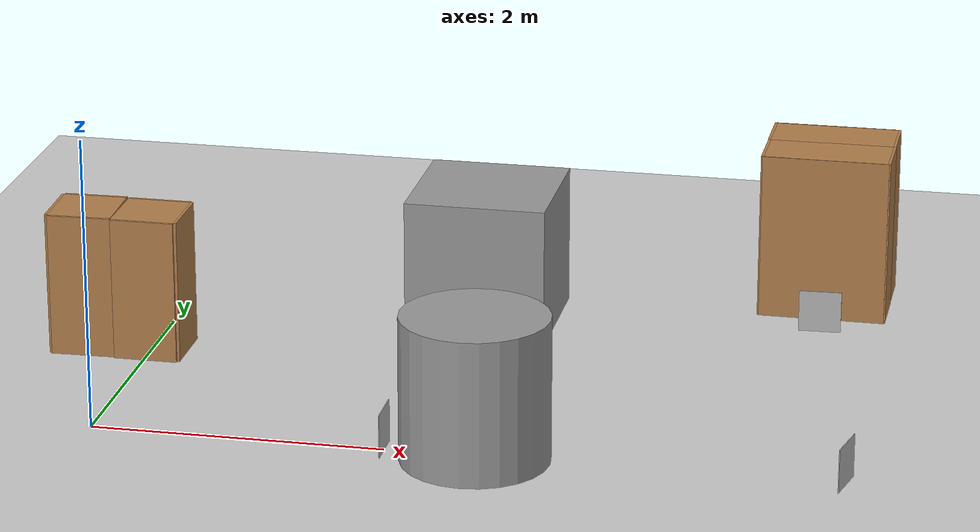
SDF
<sdf version="1.7">
 <world name="default">
  <light name="sun" type="directional">
   <pose>0 0 10 0 -0 0</pose>
   <diffuse>0.8 0.8 0.8 1</diffuse>
   <specular>0.2 0.2 0.2 1</specular>
   <attenuation>
    <range>1000</range>
    <constant>0.9</constant>
    <linear>0.01</linear>
    <quadratic>0.001</quadratic>
   </attenuation>
   <direction>-0.5 0.1 -0.9</direction>
   <spot><inner_angle>0</inner_angle><outer_angle>0</outer_angle><falloff>0</falloff></spot>
  </light>
  <model name="ground_plane">
   <static>1</static>
   <link name="link">
    <collision name="collision">
     <geometry><plane><normal>0 0 1</normal><size>100 100</size></plane></geometry>
     <surface><friction><ode><mu>100</mu><mu2>50</mu2></ode></friction></surface>
    </collision>
    <visual name="visual">
     <cast_shadows>0</cast_shadows>
     <geometry><plane><normal>0 0 1</normal><size>100 100</size></plane></geometry>
     <material>
      <script><uri>file://media/materials/scripts/gazebo.material</uri><name>Gazebo/Grey</name></script>
     </material>
    </visual>
   </link>
  </model>
  <gravity>0 0 -9.8</gravity>
  <magnetic_field>6e-06 2.3e-05 -4.2e-05</magnetic_field>
  <atmosphere type="adiabatic"/>
  <physics type="ode">
   <max_step_size>0.001</max_step_size>
   <real_time_factor>1</real_time_factor>
   <real_time_update_rate>1000</real_time_update_rate>
  </physics>
  <scene><ambient>0.4 0.4 0.4 1</ambient><background>0.7 0.7 0.7 1</background><shadows>1</shadows></scene>
  <spherical_coordinates>
   <surface_model>EARTH_WGS84</surface_model>
   <latitude_deg>0</latitude_deg>
   <longitude_deg>0</longitude_deg>
   <elevation>0</elevation>
   <heading_deg>0</heading_deg>
  </spherical_coordinates>
  <model name="marker_1">
   <static>1</static>
   <link name="link">
    <visual name="visual">
     <geometry><mesh><uri>model://marker_1/meshes/marker_1.dae</uri><scale>0.6 0.6 0.6</scale></mesh></geometry>
    </visual>
   </link>
   <pose>2 0 0 0 -0 0</pose>
  </model>
  <model name="unit_cylinder">
   <pose>2.61449 -0.028551 0.499994 4e-06 -3e-06 0</pose>
   <link name="link">
    <inertial>
     <mass>1</mass>
     <inertia><ixx>0.145833</ixx><ixy>0</ixy><ixz>0</ixz><iyy>0.145833</iyy><iyz>0</iyz><izz>0.125</izz></inertia>
    </inertial>
    <collision name="collision">
     <geometry><cylinder><radius>0.5</radius><length>1</length></cylinder></geometry>
    </collision>
    <visual name="visual">
     <geometry><cylinder><radius>0.5</radius><length>1</length></cylinder></geometry>
     <material>
      <script><name>Gazebo/Grey</name><uri>file://media/materials/scripts/gazebo.material</uri></script>
     </material>
    </visual>
   </link>
  </model>
  <model name="marker_2">
   <static>1</static>
   <link name="link">
    <visual name="visual">
     <geometry><mesh><uri>model://marker_2/meshes/marker_2.dae</uri><scale>0.6 0.6 0.6</scale></mesh></geometry>
    </visual>
   </link>
   <pose>5.03143 0.025431 0 0 0 -0.215229</pose>
  </model>
  <model name="cabinet">
   <static>1</static>
   <link name="cabinet_bottom_plate">
    <inertial>
     <pose>0 0 -1 0 -0 0</pose>
     <inertia><ixx>2.05</ixx><ixy>0</ixy><ixz>0</ixz><iyy>2.05</iyy><iyz>0</iyz><izz>2.05</izz></inertia>
     <mass>25</mass>
    </inertial>
    <collision name="cabinet_bottom_plate_geom">
     <pose>0 0 0.01 0 -0 0</pose>
     <geometry><box><size>0.45 0.45 0.02</size></box></geometry>
    </collision>
    <visual name="cabinet_bottom_plate_geom_visual">
     <pose>0 0 0.01 0 -0 0</pose>
     <geometry><box><size>0.45 0.45 0.02</size></box></geometry>
     <material>
      <script><uri>file://media/materials/scripts/gazebo.material</uri><name>Gazebo/Wood</name></script>
     </material>
    </visual>
    <collision name="cabinet_bottom_plate_geom_cabinet_back_plate">
     <pose>0.235 0 0.51 0 -0 0</pose>
     <geometry><box><size>0.02 0.45 1.02</size></box></geometry>
    </collision>
    <visual name="cabinet_bottom_plate_geom_cabinet_back_plate_visual">
     <pose>0.235 0 0.51 0 -0 0</pose>
     <geometry><box><size>0.02 0.45 1.02</size></box></geometry>
     <material>
      <script><uri>file://media/materials/scripts/gazebo.material</uri><name>Gazebo/Wood</name></script>
     </material>
    </visual>
    <collision name="cabinet_bottom_plate_geom_cabinet_left_plate">
     <pose>0 0.235 0.51 0 -0 0</pose>
     <geometry><box><size>0.45 0.02 1.02</size></box></geometry>
    </collision>
    <visual name="cabinet_bottom_plate_geom_cabinet_left_plate_visual">
     <pose>0 0.235 0.51 0 -0 0</pose>
     <geometry><box><size>0.45 0.02 1.02</size></box></geometry>
     <material>
      <script><uri>file://media/materials/scripts/gazebo.material</uri><name>Gazebo/Wood</name></script>
     </material>
    </visual>
    <collision name="cabinet_bottom_plate_geom_cabinet_middle_plate">
     <pose>0 0 0.51 0 -0 0</pose>
     <geometry><box><size>0.45 0.45 0.02</size></box></geometry>
    </collision>
    <visual name="cabinet_bottom_plate_geom_cabinet_middle_plate_visual">
     <pose>0 0 0.51 0 -0 0</pose>
     <geometry><box><size>0.45 0.45 0.02</size></box></geometry>
     <material>
      <script><uri>file://media/materials/scripts/gazebo.material</uri><name>Gazebo/Wood</name></script>
     </material>
    </visual>
    <collision name="cabinet_bottom_plate_geom_cabinet_right_plate">
     <pose>0 -0.235 0.51 0 -0 0</pose>
     <geometry><box><size>0.45 0.02 1.02</size></box></geometry>
    </collision>
    <visual name="cabinet_bottom_plate_geom_cabinet_right_plate_visual">
     <pose>0 -0.235 0.51 0 -0 0</pose>
     <geometry><box><size>0.45 0.02 1.02</size></box></geometry>
     <material>
      <script><uri>file://media/materials/scripts/gazebo.material</uri><name>Gazebo/Wood</name></script>
     </material>
    </visual>
    <collision name="cabinet_bottom_plate_geom_cabinet_top_plate">
     <pose>0 0 1.01 0 -0 0</pose>
     <geometry><box><size>0.45 0.45 0.02</size></box></geometry>
    </collision>
    <visual name="cabinet_bottom_plate_geom_cabinet_top_plate_visual">
     <pose>0 0 1.01 0 -0 0</pose>
     <geometry><box><size>0.45 0.45 0.02</size></box></geometry>
     <material>
      <script><uri>file://media/materials/scripts/gazebo.material</uri><name>Gazebo/Wood</name></script>
     </material>
    </visual>
   </link>
   <pose>0.008848 1.47191 0 0 -0 0.000273</pose>
  </model>
  <model name="bookshelf">
   <static>1</static>
   <link name="link">
    <inertial><mass>1</mass></inertial>
    <collision name="back">
     <pose>0 0.005 0.6 0 -0 0</pose>
     <geometry><box><size>0.9 0.01 1.2</size></box></geometry>
    </collision>
    <visual name="visual1">
     <pose>0 0.005 0.6 0 -0 0</pose>
     <geometry><box><size>0.9 0.01 1.2</size></box></geometry>
     <material>
      <script><uri>file://media/materials/scripts/gazebo.material</uri><name>Gazebo/Wood</name></script>
     </material>
    </visual>
    <collision name="left_side">
     <pose>0.45 -0.195 0.6 0 -0 0</pose>
     <geometry><box><size>0.02 0.4 1.2</size></box></geometry>
    </collision>
    <visual name="visual2">
     <pose>0.45 -0.195 0.6 0 -0 0</pose>
     <geometry><box><size>0.02 0.4 1.2</size></box></geometry>
     <material>
      <script><uri>file://media/materials/scripts/gazebo.material</uri><name>Gazebo/Wood</name></script>
     </material>
    </visual>
    <collision name="right_side">
     <pose>-0.45 -0.195 0.6 0 -0 0</pose>
     <geometry><box><size>0.02 0.4 1.2</size></box></geometry>
    </collision>
    <visual name="visual3">
     <pose>-0.45 -0.195 0.6 0 -0 0</pose>
     <geometry><box><size>0.02 0.4 1.2</size></box></geometry>
     <material>
      <script><uri>file://media/materials/scripts/gazebo.material</uri><name>Gazebo/Wood</name></script>
     </material>
    </visual>
    <collision name="bottom">
     <pose>0 -0.195 0.03 0 -0 0</pose>
     <geometry><box><size>0.88 0.4 0.06</size></box></geometry>
    </collision>
    <visual name="visual4">
     <pose>0 -0.195 0.03 0 -0 0</pose>
     <geometry><box><size>0.88 0.4 0.06</size></box></geometry>
     <material>
      <script><uri>file://media/materials/scripts/gazebo.material</uri><name>Gazebo/Wood</name></script>
     </material>
    </visual>
    <collision name="top">
     <pose>0 -0.195 1.19 0 -0 0</pose>
     <geometry><box><size>0.88 0.4 0.02</size></box></geometry>
    </collision>
    <visual name="visual5">
     <pose>0 -0.195 1.19 0 -0 0</pose>
     <geometry><box><size>0.88 0.4 0.02</size></box></geometry>
     <material>
      <script><uri>file://media/materials/scripts/gazebo.material</uri><name>Gazebo/Wood</name></script>
     </material>
    </visual>
    <collision name="low_shelf">
     <pose>0 -0.195 0.43 0 -0 0</pose>
     <geometry><box><size>0.88 0.4 0.02</size></box></geometry>
    </collision>
    <visual name="visual6">
     <pose>0 -0.195 0.43 0 -0 0</pose>
     <geometry><box><size>0.88 0.4 0.02</size></box></geometry>
     <material>
      <script><uri>file://media/materials/scripts/gazebo.material</uri><name>Gazebo/Wood</name></script>
     </material>
    </visual>
    <collision name="high_shelf">
     <pose>0 -0.195 0.8 0 -0 0</pose>
     <geometry><box><size>0.88 0.4 0.02</size></box></geometry>
    </collision>
    <visual name="visual7">
     <pose>0 -0.195 0.8 0 -0 0</pose>
     <geometry><box><size>0.88 0.4 0.02</size></box></geometry>
     <material>
      <script><uri>file://media/materials/scripts/gazebo.material</uri><name>Gazebo/Wood</name></script>
     </material>
    </visual>
   </link>
   <pose>4.52763 2.97533 0 0 -0 3.13937</pose>
  </model>
  <model name="marker_3">
   <static>1</static>
   <link name="link">
    <visual name="visual">
     <geometry><mesh><uri>model://marker_3/meshes/marker_3.dae</uri><scale>0.6 0.6 0.6</scale></mesh></geometry>
    </visual>
   </link>
   <pose>4.54689 2.72713 0 0 -0 1.61119</pose>
  </model>
  <model name="unit_box">
   <pose>2.18293 2.52562 0.499995 0 -1e-05 0</pose>
   <link name="link">
    <inertial>
     <mass>1</mass>
     <inertia>
      <ixx>0.166667</ixx>
      <ixy>0</ixy>
      <ixz>0</ixz>
      <iyy>0.166667</iyy>
      <iyz>0</iyz>
      <izz>0.166667</izz>
     </inertia>
    </inertial>
    <collision name="collision"><geometry><box><size>1 1 1</size></box></geometry></collision>
    <visual name="visual">
     <geometry><box><size>1 1 1</size></box></geometry>
     <material>
      <script><name>Gazebo/Grey</name><uri>file://media/materials/scripts/gazebo.material</uri></script>
     </material>
    </visual>
   </link>
  </model>
  <model name="marker_4">
   <static>1</static>
   <link name="link">
    <visual name="visual">
     <geometry><mesh><uri>model://marker_4/meshes/marker_4.dae</uri><scale>0.6 0.6 0.6</scale></mesh></geometry>
    </visual>
   </link>
   <pose>2.3 4.4 0 0 -0 0</pose>
  </model>
  <model name="marker_5">
   <static>1</static>
   <link name="link">
    <visual name="visual">
     <geometry><mesh><uri>model://marker_5/meshes/marker_5.dae</uri><scale>0.6 0.6 0.6</scale></mesh></geometry>
    </visual>
   </link>
   <pose>0 2 0 0 -0 1.47358</pose>
  </model>
  <model name="cabinet_0">
   <static>1</static>
   <link name="cabinet_bottom_plate">
    <inertial>
     <pose>0 0 -1 0 -0 0</pose>
     <inertia><ixx>2.05</ixx><ixy>0</ixy><ixz>0</ixz><iyy>2.05</iyy><iyz>0</iyz><izz>2.05</izz></inertia>
     <mass>25</mass>
    </inertial>
    <collision name="cabinet_bottom_plate_geom">
     <pose>0 0 0.01 0 -0 0</pose>
     <geometry><box><size>0.45 0.45 0.02</size></box></geometry>
    </collision>
    <visual name="cabinet_bottom_plate_geom_visual">
     <pose>0 0 0.01 0 -0 0</pose>
     <geometry><box><size>0.45 0.45 0.02</size></box></geometry>
     <material>
      <script><uri>file://media/materials/scripts/gazebo.material</uri><name>Gazebo/Wood</name></script>
     </material>
    </visual>
    <collision name="cabinet_bottom_plate_geom_cabinet_back_plate">
     <pose>0.235 0 0.51 0 -0 0</pose>
     <geometry><box><size>0.02 0.45 1.02</size></box></geometry>
    </collision>
    <visual name="cabinet_bottom_plate_geom_cabinet_back_plate_visual">
     <pose>0.235 0 0.51 0 -0 0</pose>
     <geometry><box><size>0.02 0.45 1.02</size></box></geometry>
     <material>
      <script><uri>file://media/materials/scripts/gazebo.material</uri><name>Gazebo/Wood</name></script>
     </material>
    </visual>
    <collision name="cabinet_bottom_plate_geom_cabinet_left_plate">
     <pose>0 0.235 0.51 0 -0 0</pose>
     <geometry><box><size>0.45 0.02 1.02</size></box></geometry>
    </collision>
    <visual name="cabinet_bottom_plate_geom_cabinet_left_plate_visual">
     <pose>0 0.235 0.51 0 -0 0</pose>
     <geometry><box><size>0.45 0.02 1.02</size></box></geometry>
     <material>
      <script><uri>file://media/materials/scripts/gazebo.material</uri><name>Gazebo/Wood</name></script>
     </material>
    </visual>
    <collision name="cabinet_bottom_plate_geom_cabinet_middle_plate">
     <pose>0 0 0.51 0 -0 0</pose>
     <geometry><box><size>0.45 0.45 0.02</size></box></geometry>
    </collision>
    <visual name="cabinet_bottom_plate_geom_cabinet_middle_plate_visual">
     <pose>0 0 0.51 0 -0 0</pose>
     <geometry><box><size>0.45 0.45 0.02</size></box></geometry>
     <material>
      <script><uri>file://media/materials/scripts/gazebo.material</uri><name>Gazebo/Wood</name></script>
     </material>
    </visual>
    <collision name="cabinet_bottom_plate_geom_cabinet_right_plate">
     <pose>0 -0.235 0.51 0 -0 0</pose>
     <geometry><box><size>0.45 0.02 1.02</size></box></geometry>
    </collision>
    <visual name="cabinet_bottom_plate_geom_cabinet_right_plate_visual">
     <pose>0 -0.235 0.51 0 -0 0</pose>
     <geometry><box><size>0.45 0.02 1.02</size></box></geometry>
     <material>
      <script><uri>file://media/materials/scripts/gazebo.material</uri><name>Gazebo/Wood</name></script>
     </material>
    </visual>
    <collision name="cabinet_bottom_plate_geom_cabinet_top_plate">
     <pose>0 0 1.01 0 -0 0</pose>
     <geometry><box><size>0.45 0.45 0.02</size></box></geometry>
    </collision>
    <visual name="cabinet_bottom_plate_geom_cabinet_top_plate_visual">
     <pose>0 0 1.01 0 -0 0</pose>
     <geometry><box><size>0.45 0.45 0.02</size></box></geometry>
     <material>
      <script><uri>file://media/materials/scripts/gazebo.material</uri><name>Gazebo/Wood</name></script>
     </material>
    </visual>
   </link>
   <pose>-0.451533 1.47835 0 0 0 -3.11109</pose>
  </model>
  <model name="bookshelf_0">
   <static>1</static>
   <link name="link">
    <inertial><mass>1</mass></inertial>
    <collision name="back">
     <pose>0 0.005 0.6 0 -0 0</pose>
     <geometry><box><size>0.9 0.01 1.2</size></box></geometry>
    </collision>
    <visual name="visual1">
     <pose>0 0.005 0.6 0 -0 0</pose>
     <geometry><box><size>0.9 0.01 1.2</size></box></geometry>
     <material>
      <script><uri>file://media/materials/scripts/gazebo.material</uri><name>Gazebo/Wood</name></script>
     </material>
    </visual>
    <collision name="left_side">
     <pose>0.45 -0.195 0.6 0 -0 0</pose>
     <geometry><box><size>0.02 0.4 1.2</size></box></geometry>
    </collision>
    <visual name="visual2">
     <pose>0.45 -0.195 0.6 0 -0 0</pose>
     <geometry><box><size>0.02 0.4 1.2</size></box></geometry>
     <material>
      <script><uri>file://media/materials/scripts/gazebo.material</uri><name>Gazebo/Wood</name></script>
     </material>
    </visual>
    <collision name="right_side">
     <pose>-0.45 -0.195 0.6 0 -0 0</pose>
     <geometry><box><size>0.02 0.4 1.2</size></box></geometry>
    </collision>
    <visual name="visual3">
     <pose>-0.45 -0.195 0.6 0 -0 0</pose>
     <geometry><box><size>0.02 0.4 1.2</size></box></geometry>
     <material>
      <script><uri>file://media/materials/scripts/gazebo.material</uri><name>Gazebo/Wood</name></script>
     </material>
    </visual>
    <collision name="bottom">
     <pose>0 -0.195 0.03 0 -0 0</pose>
     <geometry><box><size>0.88 0.4 0.06</size></box></geometry>
    </collision>
    <visual name="visual4">
     <pose>0 -0.195 0.03 0 -0 0</pose>
     <geometry><box><size>0.88 0.4 0.06</size></box></geometry>
     <material>
      <script><uri>file://media/materials/scripts/gazebo.material</uri><name>Gazebo/Wood</name></script>
     </material>
    </visual>
    <collision name="top">
     <pose>0 -0.195 1.19 0 -0 0</pose>
     <geometry><box><size>0.88 0.4 0.02</size></box></geometry>
    </collision>
    <visual name="visual5">
     <pose>0 -0.195 1.19 0 -0 0</pose>
     <geometry><box><size>0.88 0.4 0.02</size></box></geometry>
     <material>
      <script><uri>file://media/materials/scripts/gazebo.material</uri><name>Gazebo/Wood</name></script>
     </material>
    </visual>
    <collision name="low_shelf">
     <pose>0 -0.195 0.43 0 -0 0</pose>
     <geometry><box><size>0.88 0.4 0.02</size></box></geometry>
    </collision>
    <visual name="visual6">
     <pose>0 -0.195 0.43 0 -0 0</pose>
     <geometry><box><size>0.88 0.4 0.02</size></box></geometry>
     <material>
      <script><uri>file://media/materials/scripts/gazebo.material</uri><name>Gazebo/Wood</name></script>
     </material>
    </visual>
    <collision name="high_shelf">
     <pose>0 -0.195 0.8 0 -0 0</pose>
     <geometry><box><size>0.88 0.4 0.02</size></box></geometry>
    </collision>
    <visual name="visual7">
     <pose>0 -0.195 0.8 0 -0 0</pose>
     <geometry><box><size>0.88 0.4 0.02</size></box></geometry>
     <material>
      <script><uri>file://media/materials/scripts/gazebo.material</uri><name>Gazebo/Wood</name></script>
     </material>
    </visual>
   </link>
   <pose>4.52556 3.75921 0 0 -0 0</pose>
  </model>
 </world>
</sdf>
